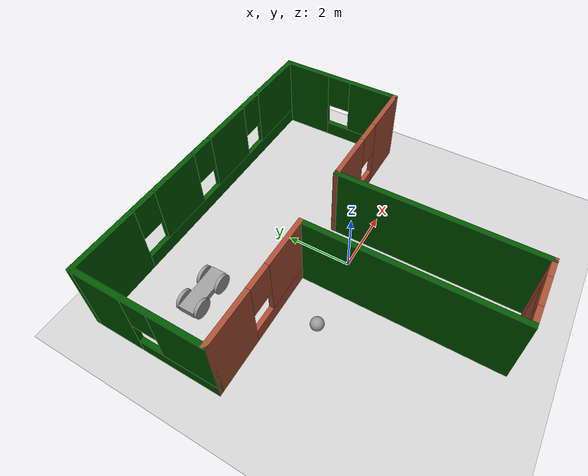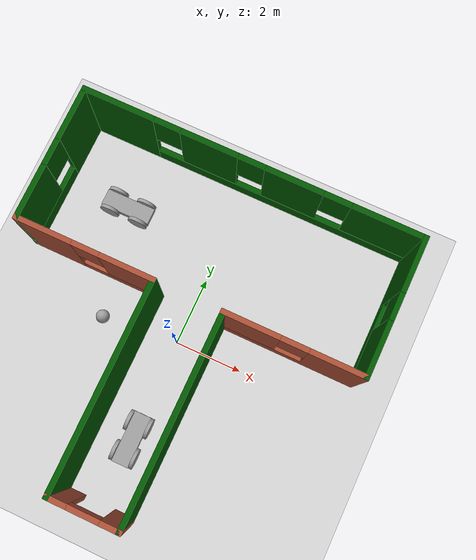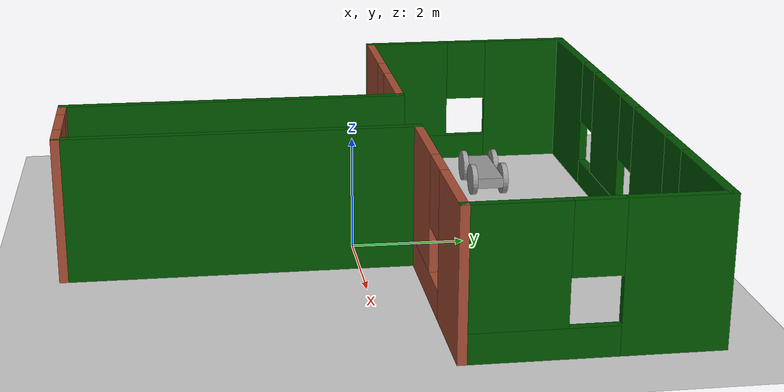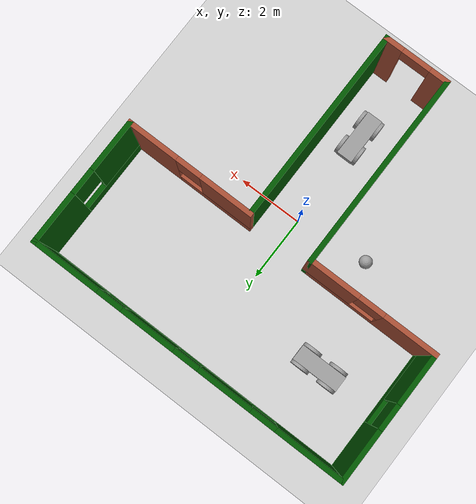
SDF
<sdf version="1.6">
 <world name="default">
  <plugin name="timsAwesomePlugin" filename="libtimsAwesomePlugin.so"/>
  <light name="sun" type="directional">
   <pose>0 0 10 0 -0 0</pose>
   <diffuse>0.8 0.8 0.8 1</diffuse>
   <specular>0.2 0.2 0.2 1</specular>
   <attenuation>
    <range>1000</range>
    <constant>0.9</constant>
    <linear>0.01</linear>
    <quadratic>0.001</quadratic>
   </attenuation>
   <direction>-0.5 0.1 -0.9</direction>
  </light>
  <model name="ground_plane">
   <static>1</static>
   <link name="link">
    <collision name="collision">
     <geometry><plane><normal>0 0 1</normal><size>100 100</size></plane></geometry>
     <surface>
      <contact><collide_bitmask>65535</collide_bitmask></contact>
      <friction><ode><mu>100</mu><mu2>50</mu2></ode></friction>
     </surface>
    </collision>
    <visual name="visual">
     <cast_shadows>0</cast_shadows>
     <geometry><plane><normal>0 0 1</normal><size>100 100</size></plane></geometry>
     <material>
      <script><uri>file://media/materials/scripts/gazebo.material</uri><name>Gazebo/Grey</name></script>
     </material>
    </visual>
   </link>
  </model>
  <gravity>0 0 -9.8</gravity>
  <magnetic_field>6e-06 2.3e-05 -4.2e-05</magnetic_field>
  <atmosphere type="adiabatic"/>
  <physics name="default_physics" default="0" type="ode">
   <max_step_size>0.001</max_step_size>
   <real_time_factor>1</real_time_factor>
   <real_time_update_rate>1000</real_time_update_rate>
  </physics>
  <scene><ambient>0.4 0.4 0.4 1</ambient><background>0.7 0.7 0.7 1</background><shadows>1</shadows></scene>
  <spherical_coordinates>
   <surface_model>EARTH_WGS84</surface_model>
   <latitude_deg>0</latitude_deg>
   <longitude_deg>0</longitude_deg>
   <elevation>0</elevation>
   <heading_deg>0</heading_deg>
  </spherical_coordinates>
  <model name="Big_T_Building">
   <link name="Wall_10">
    <pose>5 3 0 0 0 -1.5708</pose>
    <visual name="Wall_10_Visual_0">
     <pose>-1.2375 0 1.25 0 -0 0</pose>
     <geometry><box><size>1.675 0.15 2.5</size></box></geometry>
     <material>
      <script><uri>file://media/materials/scripts/gazebo.material</uri><name>Gazebo/Grey</name></script>
      <ambient>0 0.333333 0 1</ambient>
     </material>
     <meta><layer>0</layer></meta>
    </visual>
    <collision name="Wall_10_Collision_0">
     <geometry><box><size>1.675 0.15 2.5</size></box></geometry>
     <pose>-1.2375 0 1.25 0 -0 0</pose>
    </collision>
    <visual name="Wall_10_Visual_1">
     <pose>0.8375 0 0.25 0 -0 0</pose>
     <geometry><box><size>2.475 0.15 0.5</size></box></geometry>
     <material>
      <script><uri>file://media/materials/scripts/gazebo.material</uri><name>Gazebo/Grey</name></script>
      <ambient>0 0.333333 0 1</ambient>
     </material>
     <meta><layer>0</layer></meta>
    </visual>
    <collision name="Wall_10_Collision_1">
     <geometry><box><size>2.475 0.15 0.5</size></box></geometry>
     <pose>0.8375 0 0.25 0 -0 0</pose>
    </collision>
    <visual name="Wall_10_Visual_2">
     <pose>1.2375 0 1.5 0 -0 0</pose>
     <geometry><box><size>1.675 0.15 2</size></box></geometry>
     <material>
      <script><uri>file://media/materials/scripts/gazebo.material</uri><name>Gazebo/Grey</name></script>
      <ambient>0 0.333333 0 1</ambient>
     </material>
     <meta><layer>0</layer></meta>
    </visual>
    <collision name="Wall_10_Collision_2">
     <geometry><box><size>1.675 0.15 2</size></box></geometry>
     <pose>1.2375 0 1.5 0 -0 0</pose>
    </collision>
    <visual name="Wall_10_Visual_3">
     <pose>0 0 1.9 0 -0 0</pose>
     <geometry><box><size>0.8 0.15 1.2</size></box></geometry>
     <material>
      <script><uri>file://media/materials/scripts/gazebo.material</uri><name>Gazebo/Grey</name></script>
      <ambient>0 0.333333 0 1</ambient>
     </material>
     <meta><layer>0</layer></meta>
    </visual>
    <collision name="Wall_10_Collision_3">
     <geometry><box><size>0.8 0.15 1.2</size></box></geometry>
     <pose>0 0 1.9 0 -0 0</pose>
    </collision>
   </link>
   <link name="Wall_12">
    <pose>-5 3 0 0 0 -1.5708</pose>
    <visual name="Wall_12_Visual_0">
     <pose>-1.2375 0 1.25 0 -0 0</pose>
     <geometry><box><size>1.675 0.15 2.5</size></box></geometry>
     <material>
      <script><uri>file://media/materials/scripts/gazebo.material</uri><name>Gazebo/Grey</name></script>
      <ambient>0 0.333333 0 1</ambient>
     </material>
     <meta><layer>0</layer></meta>
    </visual>
    <collision name="Wall_12_Collision_0">
     <geometry><box><size>1.675 0.15 2.5</size></box></geometry>
     <pose>-1.2375 0 1.25 0 -0 0</pose>
    </collision>
    <visual name="Wall_12_Visual_1">
     <pose>0.8375 0 0.25 0 -0 0</pose>
     <geometry><box><size>2.475 0.15 0.5</size></box></geometry>
     <material>
      <script><uri>file://media/materials/scripts/gazebo.material</uri><name>Gazebo/Grey</name></script>
      <ambient>0 0.333333 0 1</ambient>
     </material>
     <meta><layer>0</layer></meta>
    </visual>
    <collision name="Wall_12_Collision_1">
     <geometry><box><size>2.475 0.15 0.5</size></box></geometry>
     <pose>0.8375 0 0.25 0 -0 0</pose>
    </collision>
    <visual name="Wall_12_Visual_2">
     <pose>1.2375 0 1.5 0 -0 0</pose>
     <geometry><box><size>1.675 0.15 2</size></box></geometry>
     <material>
      <script><uri>file://media/materials/scripts/gazebo.material</uri><name>Gazebo/Grey</name></script>
      <ambient>0 0.333333 0 1</ambient>
     </material>
     <meta><layer>0</layer></meta>
    </visual>
    <collision name="Wall_12_Collision_2">
     <geometry><box><size>1.675 0.15 2</size></box></geometry>
     <pose>1.2375 0 1.5 0 -0 0</pose>
    </collision>
    <visual name="Wall_12_Visual_3">
     <pose>0 0 1.9 0 -0 0</pose>
     <geometry><box><size>0.8 0.15 1.2</size></box></geometry>
     <material>
      <script><uri>file://media/materials/scripts/gazebo.material</uri><name>Gazebo/Grey</name></script>
      <ambient>0 0.333333 0 1</ambient>
     </material>
     <meta><layer>0</layer></meta>
    </visual>
    <collision name="Wall_12_Collision_3">
     <geometry><box><size>0.8 0.15 1.2</size></box></geometry>
     <pose>0 0 1.9 0 -0 0</pose>
    </collision>
   </link>
   <link name="Wall_25">
    <pose>-3 1 0 0 -0 0</pose>
    <visual name="Wall_25_Visual_0">
     <pose>-1.22162 0 1.25 0 -0 0</pose>
     <geometry><box><size>1.70676 0.15 2.5</size></box></geometry>
     <material>
      <script><uri>file://media/materials/scripts/gazebo.material</uri><name>Gazebo/Bricks</name></script>
      <ambient>0 0.333333 0 1</ambient>
     </material>
     <meta><layer>0</layer></meta>
    </visual>
    <collision name="Wall_25_Collision_0">
     <geometry><box><size>1.70676 0.15 2.5</size></box></geometry>
     <pose>-1.22162 0 1.25 0 -0 0</pose>
    </collision>
    <visual name="Wall_25_Visual_1">
     <pose>0.853379 0 0.25 0 -0 0</pose>
     <geometry><box><size>2.44324 0.15 0.5</size></box></geometry>
     <material>
      <script><uri>file://media/materials/scripts/gazebo.material</uri><name>Gazebo/Bricks</name></script>
      <ambient>0 0.333333 0 1</ambient>
     </material>
     <meta><layer>0</layer></meta>
    </visual>
    <collision name="Wall_25_Collision_1">
     <geometry><box><size>2.44324 0.15 0.5</size></box></geometry>
     <pose>0.853379 0 0.25 0 -0 0</pose>
    </collision>
    <visual name="Wall_25_Visual_2">
     <pose>1.25338 0 1.5 0 -0 0</pose>
     <geometry><box><size>1.64324 0.15 2</size></box></geometry>
     <material>
      <script><uri>file://media/materials/scripts/gazebo.material</uri><name>Gazebo/Bricks</name></script>
      <ambient>0 0.333333 0 1</ambient>
     </material>
     <meta><layer>0</layer></meta>
    </visual>
    <collision name="Wall_25_Collision_2">
     <geometry><box><size>1.64324 0.15 2</size></box></geometry>
     <pose>1.25338 0 1.5 0 -0 0</pose>
    </collision>
    <visual name="Wall_25_Visual_3">
     <pose>0.031757 0 1.9 0 -0 0</pose>
     <geometry><box><size>0.8 0.15 1.2</size></box></geometry>
     <material>
      <script><uri>file://media/materials/scripts/gazebo.material</uri><name>Gazebo/Bricks</name></script>
      <ambient>0 0.333333 0 1</ambient>
     </material>
     <meta><layer>0</layer></meta>
    </visual>
    <collision name="Wall_25_Collision_3">
     <geometry><box><size>0.8 0.15 1.2</size></box></geometry>
     <pose>0.031757 0 1.9 0 -0 0</pose>
    </collision>
   </link>
   <link name="Wall_27">
    <pose>3 1 0 0 -0 3.14159</pose>
    <visual name="Wall_27_Visual_0">
     <pose>-1.24879 0 1.25 0 -0 0</pose>
     <geometry><box><size>1.65241 0.15 2.5</size></box></geometry>
     <material>
      <script><uri>file://media/materials/scripts/gazebo.material</uri><name>Gazebo/Bricks</name></script>
      <ambient>0 0.333333 0 1</ambient>
     </material>
     <meta><layer>0</layer></meta>
    </visual>
    <collision name="Wall_27_Collision_0">
     <geometry><box><size>1.65241 0.15 2.5</size></box></geometry>
     <pose>-1.24879 0 1.25 0 -0 0</pose>
    </collision>
    <visual name="Wall_27_Visual_1">
     <pose>0.826208 0 0.25 0 -0 0</pose>
     <geometry><box><size>2.49758 0.15 0.5</size></box></geometry>
     <material>
      <script><uri>file://media/materials/scripts/gazebo.material</uri><name>Gazebo/Bricks</name></script>
      <ambient>0 0.333333 0 1</ambient>
     </material>
     <meta><layer>0</layer></meta>
    </visual>
    <collision name="Wall_27_Collision_1">
     <geometry><box><size>2.49758 0.15 0.5</size></box></geometry>
     <pose>0.826208 0 0.25 0 -0 0</pose>
    </collision>
    <visual name="Wall_27_Visual_2">
     <pose>1.22621 0 1.5 0 -0 0</pose>
     <geometry><box><size>1.69758 0.15 2</size></box></geometry>
     <material>
      <script><uri>file://media/materials/scripts/gazebo.material</uri><name>Gazebo/Bricks</name></script>
      <ambient>0 0.333333 0 1</ambient>
     </material>
     <meta><layer>0</layer></meta>
    </visual>
    <collision name="Wall_27_Collision_2">
     <geometry><box><size>1.69758 0.15 2</size></box></geometry>
     <pose>1.22621 0 1.5 0 -0 0</pose>
    </collision>
    <visual name="Wall_27_Visual_3">
     <pose>-0.022585 0 1.9 0 -0 0</pose>
     <geometry><box><size>0.8 0.15 1.2</size></box></geometry>
     <material>
      <script><uri>file://media/materials/scripts/gazebo.material</uri><name>Gazebo/Bricks</name></script>
      <ambient>0 0.333333 0 1</ambient>
     </material>
     <meta><layer>0</layer></meta>
    </visual>
    <collision name="Wall_27_Collision_3">
     <geometry><box><size>0.8 0.15 1.2</size></box></geometry>
     <pose>-0.022585 0 1.9 0 -0 0</pose>
    </collision>
   </link>
   <link name="Wall_29">
    <collision name="Wall_29_Collision">
     <geometry><box><size>6.15 0.15 2.5</size></box></geometry>
     <pose>0 0 1.25 0 -0 0</pose>
    </collision>
    <visual name="Wall_29_Visual">
     <pose>0 0 1.25 0 -0 0</pose>
     <geometry><box><size>6.15 0.15 2.5</size></box></geometry>
     <material>
      <script><uri>file://media/materials/scripts/gazebo.material</uri><name>Gazebo/Grey</name></script>
      <ambient>0 0.333333 0 1</ambient>
     </material>
     <meta><layer>0</layer></meta>
    </visual>
    <pose>-1 -2 0 0 0 -1.5708</pose>
   </link>
   <link name="Wall_31">
    <collision name="Wall_31_Collision">
     <geometry><box><size>6.15 0.15 2.5</size></box></geometry>
     <pose>0 0 1.25 0 -0 0</pose>
    </collision>
    <visual name="Wall_31_Visual">
     <pose>0 0 1.25 0 -0 0</pose>
     <geometry><box><size>6.15 0.15 2.5</size></box></geometry>
     <material>
      <script><uri>file://media/materials/scripts/gazebo.material</uri><name>Gazebo/Grey</name></script>
      <ambient>0 0.333333 0 1</ambient>
     </material>
     <meta><layer>0</layer></meta>
    </visual>
    <pose>1 -2 0 0 0 -1.5708</pose>
   </link>
   <link name="Wall_32">
    <pose>0 -5 0 0 -0 3.14159</pose>
    <visual name="Wall_32_Visual_0">
     <pose>-0.763969 0 1.25 0 -0 0</pose>
     <geometry><box><size>0.622062 0.15 2.5</size></box></geometry>
     <material>
      <script><uri>file://media/materials/scripts/gazebo.material</uri><name>Gazebo/Bricks</name></script>
      <ambient>0 0.333333 0 1</ambient>
     </material>
     <meta><layer>0</layer></meta>
    </visual>
    <collision name="Wall_32_Collision_0">
     <geometry><box><size>0.622062 0.15 2.5</size></box></geometry>
     <pose>-0.763969 0 1.25 0 -0 0</pose>
    </collision>
    <visual name="Wall_32_Visual_1">
     <pose>0.761031 0 1.25 0 -0 0</pose>
     <geometry><box><size>0.627938 0.15 2.5</size></box></geometry>
     <material>
      <script><uri>file://media/materials/scripts/gazebo.material</uri><name>Gazebo/Bricks</name></script>
      <ambient>0 0.333333 0 1</ambient>
     </material>
     <meta><layer>0</layer></meta>
    </visual>
    <collision name="Wall_32_Collision_1">
     <geometry><box><size>0.627938 0.15 2.5</size></box></geometry>
     <pose>0.761031 0 1.25 0 -0 0</pose>
    </collision>
    <visual name="Wall_32_Visual_2">
     <pose>-0.002938 0 2.25 0 -0 0</pose>
     <geometry><box><size>0.9 0.15 0.5</size></box></geometry>
     <material>
      <script><uri>file://media/materials/scripts/gazebo.material</uri><name>Gazebo/Bricks</name></script>
      <ambient>0 0.333333 0 1</ambient>
     </material>
     <meta><layer>0</layer></meta>
    </visual>
    <collision name="Wall_32_Collision_2">
     <geometry><box><size>0.9 0.15 0.5</size></box></geometry>
     <pose>-0.002938 0 2.25 0 -0 0</pose>
    </collision>
   </link>
   <link name="Wall_9">
    <pose>0 5 0 0 -0 0</pose>
    <visual name="Wall_9_Visual_0">
     <pose>-3.9875 0 1.25 0 -0 0</pose>
     <geometry><box><size>2.175 0.15 2.5</size></box></geometry>
     <material>
      <script><uri>file://media/materials/scripts/gazebo.material</uri><name>Gazebo/Grey</name></script>
      <ambient>0 0.333333 0 1</ambient>
     </material>
     <meta><layer>0</layer></meta>
    </visual>
    <collision name="Wall_9_Collision_0">
     <geometry><box><size>2.175 0.15 2.5</size></box></geometry>
     <pose>-3.9875 0 1.25 0 -0 0</pose>
    </collision>
    <visual name="Wall_9_Visual_1">
     <pose>1.0875 0 0.25 0 -0 0</pose>
     <geometry><box><size>7.975 0.15 0.5</size></box></geometry>
     <material>
      <script><uri>file://media/materials/scripts/gazebo.material</uri><name>Gazebo/Grey</name></script>
      <ambient>0 0.333333 0 1</ambient>
     </material>
     <meta><layer>0</layer></meta>
    </visual>
    <collision name="Wall_9_Collision_1">
     <geometry><box><size>7.975 0.15 0.5</size></box></geometry>
     <pose>1.0875 0 0.25 0 -0 0</pose>
    </collision>
    <visual name="Wall_9_Visual_2">
     <pose>-1.25 0 1.5 0 -0 0</pose>
     <geometry><box><size>1.7 0.15 2</size></box></geometry>
     <material>
      <script><uri>file://media/materials/scripts/gazebo.material</uri><name>Gazebo/Grey</name></script>
      <ambient>0 0.333333 0 1</ambient>
     </material>
     <meta><layer>0</layer></meta>
    </visual>
    <collision name="Wall_9_Collision_2">
     <geometry><box><size>1.7 0.15 2</size></box></geometry>
     <pose>-1.25 0 1.5 0 -0 0</pose>
    </collision>
    <visual name="Wall_9_Visual_3">
     <pose>1.25 0 1.5 0 -0 0</pose>
     <geometry><box><size>1.7 0.15 2</size></box></geometry>
     <material>
      <script><uri>file://media/materials/scripts/gazebo.material</uri><name>Gazebo/Grey</name></script>
      <ambient>0 0.333333 0 1</ambient>
     </material>
     <meta><layer>0</layer></meta>
    </visual>
    <collision name="Wall_9_Collision_3">
     <geometry><box><size>1.7 0.15 2</size></box></geometry>
     <pose>1.25 0 1.5 0 -0 0</pose>
    </collision>
    <visual name="Wall_9_Visual_4">
     <pose>3.9875 0 1.5 0 -0 0</pose>
     <geometry><box><size>2.175 0.15 2</size></box></geometry>
     <material>
      <script><uri>file://media/materials/scripts/gazebo.material</uri><name>Gazebo/Grey</name></script>
      <ambient>0 0.333333 0 1</ambient>
     </material>
     <meta><layer>0</layer></meta>
    </visual>
    <collision name="Wall_9_Collision_4">
     <geometry><box><size>2.175 0.15 2</size></box></geometry>
     <pose>3.9875 0 1.5 0 -0 0</pose>
    </collision>
    <visual name="Wall_9_Visual_5">
     <pose>-2.5 0 1.9 0 -0 0</pose>
     <geometry><box><size>0.8 0.15 1.2</size></box></geometry>
     <material>
      <script><uri>file://media/materials/scripts/gazebo.material</uri><name>Gazebo/Grey</name></script>
      <ambient>0 0.333333 0 1</ambient>
     </material>
     <meta><layer>0</layer></meta>
    </visual>
    <collision name="Wall_9_Collision_5">
     <geometry><box><size>0.8 0.15 1.2</size></box></geometry>
     <pose>-2.5 0 1.9 0 -0 0</pose>
    </collision>
    <visual name="Wall_9_Visual_6">
     <pose>-0 0 1.9 0 -0 0</pose>
     <geometry><box><size>0.8 0.15 1.2</size></box></geometry>
     <material>
      <script><uri>file://media/materials/scripts/gazebo.material</uri><name>Gazebo/Grey</name></script>
      <ambient>0 0.333333 0 1</ambient>
     </material>
     <meta><layer>0</layer></meta>
    </visual>
    <collision name="Wall_9_Collision_6">
     <geometry><box><size>0.8 0.15 1.2</size></box></geometry>
     <pose>-0 0 1.9 0 -0 0</pose>
    </collision>
    <visual name="Wall_9_Visual_7">
     <pose>2.5 0 1.9 0 -0 0</pose>
     <geometry><box><size>0.8 0.15 1.2</size></box></geometry>
     <material>
      <script><uri>file://media/materials/scripts/gazebo.material</uri><name>Gazebo/Grey</name></script>
      <ambient>0 0.333333 0 1</ambient>
     </material>
     <meta><layer>0</layer></meta>
    </visual>
    <collision name="Wall_9_Collision_7">
     <geometry><box><size>0.8 0.15 1.2</size></box></geometry>
     <pose>2.5 0 1.9 0 -0 0</pose>
    </collision>
   </link>
   <static>1</static>
  </model>
  <model name="fourWheelRobot">
   <link name="link_0_clone">
    <inertial>
     <mass>1</mass>
     <inertia>
      <ixx>0.166667</ixx>
      <ixy>0</ixy>
      <ixz>0</ixz>
      <iyy>0.166667</iyy>
      <iyz>0</iyz>
      <izz>0.166667</izz>
     </inertia>
    </inertial>
    <visual name="visual">
     <geometry><box><size>1.5 0.5 0.2</size></box></geometry>
     <material>
      <lighting>1</lighting>
      <script><uri>file://media/materials/scripts/gazebo.material</uri><name>Gazebo/Grey</name></script>
      <shader type="pixel"><normal_map>__default__</normal_map></shader>
      <ambient>0.3 0.3 0.3 1</ambient>
      <diffuse>0.7 0.7 0.7 1</diffuse>
      <specular>0.01 0.01 0.01 1</specular>
      <emissive>0 0 0 1</emissive>
     </material>
    </visual>
    <collision name="collision">
     <geometry><box><size>1.5 0.5 0.2</size></box></geometry>
     <surface>
      <friction>
       <ode><mu>1</mu><mu2>1</mu2><fdir1>0 0 0</fdir1><slip1>0</slip1><slip2>0</slip2></ode>
       <torsional>
        <coefficient>1</coefficient>
        <patch_radius>0</patch_radius>
        <surface_radius>0</surface_radius>
        <use_patch_radius>1</use_patch_radius>
        <ode><slip>0</slip></ode>
       </torsional>
      </friction>
      <bounce><restitution_coefficient>0</restitution_coefficient><threshold>1e+06</threshold></bounce>
      <contact>
       <collide_without_contact>0</collide_without_contact>
       <collide_without_contact_bitmask>1</collide_without_contact_bitmask>
       <collide_bitmask>1</collide_bitmask>
       <ode>
        <soft_cfm>0</soft_cfm>
        <soft_erp>0.2</soft_erp>
        <kp>1e+13</kp>
        <kd>1</kd>
        <max_vel>0.01</max_vel>
        <min_depth>0</min_depth>
       </ode>
       <bullet>
        <split_impulse>1</split_impulse>
        <split_impulse_penetration_threshold>-0.01</split_impulse_penetration_threshold>
        <soft_cfm>0</soft_cfm>
        <soft_erp>0.2</soft_erp>
        <kp>1e+13</kp>
        <kd>1</kd>
       </bullet>
      </contact>
     </surface>
    </collision>
   </link>
   <link name="link_1_clone">
    <pose>0.45 -0.300029 0 1.5707 -0 0</pose>
    <inertial>
     <mass>1</mass>
     <inertia><ixx>0.145833</ixx><ixy>0</ixy><ixz>0</ixz><iyy>0.145833</iyy><iyz>0</iyz><izz>0.125</izz></inertia>
    </inertial>
    <visual name="visual">
     <geometry><cylinder><radius>0.3</radius><length>0.1</length></cylinder></geometry>
     <material>
      <lighting>1</lighting>
      <script><uri>file://media/materials/scripts/gazebo.material</uri><name>Gazebo/Grey</name></script>
      <shader type="pixel"><normal_map>__default__</normal_map></shader>
      <ambient>0.3 0.3 0.3 1</ambient>
      <diffuse>0.7 0.7 0.7 1</diffuse>
      <specular>0.01 0.01 0.01 1</specular>
      <emissive>0 0 0 1</emissive>
     </material>
    </visual>
    <collision name="collision">
     <geometry><cylinder><radius>0.3</radius><length>0.1</length></cylinder></geometry>
     <surface>
      <friction>
       <ode><mu>1</mu><mu2>1</mu2><fdir1>0 0 0</fdir1><slip1>0</slip1><slip2>0</slip2></ode>
       <torsional>
        <coefficient>1</coefficient>
        <patch_radius>0</patch_radius>
        <surface_radius>0</surface_radius>
        <use_patch_radius>1</use_patch_radius>
        <ode><slip>0</slip></ode>
       </torsional>
      </friction>
      <bounce><restitution_coefficient>0</restitution_coefficient><threshold>1e+06</threshold></bounce>
      <contact>
       <collide_without_contact>0</collide_without_contact>
       <collide_without_contact_bitmask>1</collide_without_contact_bitmask>
       <collide_bitmask>1</collide_bitmask>
       <ode>
        <soft_cfm>0</soft_cfm>
        <soft_erp>0.2</soft_erp>
        <kp>1e+13</kp>
        <kd>1</kd>
        <max_vel>0.01</max_vel>
        <min_depth>0</min_depth>
       </ode>
       <bullet>
        <split_impulse>1</split_impulse>
        <split_impulse_penetration_threshold>-0.01</split_impulse_penetration_threshold>
        <soft_cfm>0</soft_cfm>
        <soft_erp>0.2</soft_erp>
        <kp>1e+13</kp>
        <kd>1</kd>
       </bullet>
      </contact>
     </surface>
    </collision>
   </link>
   <link name="link_1_clone_clone">
    <pose>-0.45 -0.300029 0 1.5707 -0 0</pose>
    <inertial>
     <mass>1</mass>
     <inertia><ixx>0.145833</ixx><ixy>0</ixy><ixz>0</ixz><iyy>0.145833</iyy><iyz>0</iyz><izz>0.125</izz></inertia>
    </inertial>
    <visual name="visual">
     <geometry><cylinder><radius>0.3</radius><length>0.1</length></cylinder></geometry>
     <material>
      <lighting>1</lighting>
      <script><uri>file://media/materials/scripts/gazebo.material</uri><name>Gazebo/Grey</name></script>
      <shader type="pixel"><normal_map>__default__</normal_map></shader>
      <ambient>0.3 0.3 0.3 1</ambient>
      <diffuse>0.7 0.7 0.7 1</diffuse>
      <specular>0.01 0.01 0.01 1</specular>
      <emissive>0 0 0 1</emissive>
     </material>
    </visual>
    <collision name="collision">
     <geometry><cylinder><radius>0.3</radius><length>0.1</length></cylinder></geometry>
     <surface>
      <friction>
       <ode><mu>1</mu><mu2>1</mu2><fdir1>0 0 0</fdir1><slip1>0</slip1><slip2>0</slip2></ode>
       <torsional>
        <coefficient>1</coefficient>
        <patch_radius>0</patch_radius>
        <surface_radius>0</surface_radius>
        <use_patch_radius>1</use_patch_radius>
        <ode><slip>0</slip></ode>
       </torsional>
      </friction>
      <bounce><restitution_coefficient>0</restitution_coefficient><threshold>1e+06</threshold></bounce>
      <contact>
       <collide_without_contact>0</collide_without_contact>
       <collide_without_contact_bitmask>1</collide_without_contact_bitmask>
       <collide_bitmask>1</collide_bitmask>
       <ode>
        <soft_cfm>0</soft_cfm>
        <soft_erp>0.2</soft_erp>
        <kp>1e+13</kp>
        <kd>1</kd>
        <max_vel>0.01</max_vel>
        <min_depth>0</min_depth>
       </ode>
       <bullet>
        <split_impulse>1</split_impulse>
        <split_impulse_penetration_threshold>-0.01</split_impulse_penetration_threshold>
        <soft_cfm>0</soft_cfm>
        <soft_erp>0.2</soft_erp>
        <kp>1e+13</kp>
        <kd>1</kd>
       </bullet>
      </contact>
     </surface>
    </collision>
   </link>
   <link name="link_1_clone_clone_0">
    <pose>-0.45 0.300029 0 1.5707 -0 0</pose>
    <inertial>
     <mass>1</mass>
     <inertia><ixx>0.145833</ixx><ixy>0</ixy><ixz>0</ixz><iyy>0.145833</iyy><iyz>0</iyz><izz>0.125</izz></inertia>
    </inertial>
    <visual name="visual">
     <geometry><cylinder><radius>0.3</radius><length>0.1</length></cylinder></geometry>
     <material>
      <lighting>1</lighting>
      <script><uri>file://media/materials/scripts/gazebo.material</uri><name>Gazebo/Grey</name></script>
      <shader type="pixel"><normal_map>__default__</normal_map></shader>
      <ambient>0.3 0.3 0.3 1</ambient>
      <diffuse>0.7 0.7 0.7 1</diffuse>
      <specular>0.01 0.01 0.01 1</specular>
      <emissive>0 0 0 1</emissive>
     </material>
    </visual>
    <collision name="collision">
     <geometry><cylinder><radius>0.3</radius><length>0.1</length></cylinder></geometry>
     <surface>
      <friction>
       <ode><mu>1</mu><mu2>1</mu2><fdir1>0 0 0</fdir1><slip1>0</slip1><slip2>0</slip2></ode>
       <torsional>
        <coefficient>1</coefficient>
        <patch_radius>0</patch_radius>
        <surface_radius>0</surface_radius>
        <use_patch_radius>1</use_patch_radius>
        <ode><slip>0</slip></ode>
       </torsional>
      </friction>
      <bounce><restitution_coefficient>0</restitution_coefficient><threshold>1e+06</threshold></bounce>
      <contact>
       <collide_without_contact>0</collide_without_contact>
       <collide_without_contact_bitmask>1</collide_without_contact_bitmask>
       <collide_bitmask>1</collide_bitmask>
       <ode>
        <soft_cfm>0</soft_cfm>
        <soft_erp>0.2</soft_erp>
        <kp>1e+13</kp>
        <kd>1</kd>
        <max_vel>0.01</max_vel>
        <min_depth>0</min_depth>
       </ode>
       <bullet>
        <split_impulse>1</split_impulse>
        <split_impulse_penetration_threshold>-0.01</split_impulse_penetration_threshold>
        <soft_cfm>0</soft_cfm>
        <soft_erp>0.2</soft_erp>
        <kp>1e+13</kp>
        <kd>1</kd>
       </bullet>
      </contact>
     </surface>
    </collision>
   </link>
   <link name="link_1_clone_clone_1">
    <pose>0.45 0.300029 0 1.5707 -0 0</pose>
    <inertial>
     <mass>1</mass>
     <inertia><ixx>0.145833</ixx><ixy>0</ixy><ixz>0</ixz><iyy>0.145833</iyy><iyz>0</iyz><izz>0.125</izz></inertia>
    </inertial>
    <visual name="visual">
     <geometry><cylinder><radius>0.3</radius><length>0.1</length></cylinder></geometry>
     <material>
      <lighting>1</lighting>
      <script><uri>file://media/materials/scripts/gazebo.material</uri><name>Gazebo/Grey</name></script>
      <shader type="pixel"><normal_map>__default__</normal_map></shader>
      <ambient>0.3 0.3 0.3 1</ambient>
      <diffuse>0.7 0.7 0.7 1</diffuse>
      <specular>0.01 0.01 0.01 1</specular>
      <emissive>0 0 0 1</emissive>
     </material>
    </visual>
    <collision name="collision">
     <geometry><cylinder><radius>0.3</radius><length>0.1</length></cylinder></geometry>
     <surface>
      <friction>
       <ode><mu>1</mu><mu2>1</mu2><fdir1>0 0 0</fdir1><slip1>0</slip1><slip2>0</slip2></ode>
       <torsional>
        <coefficient>1</coefficient>
        <patch_radius>0</patch_radius>
        <surface_radius>0</surface_radius>
        <use_patch_radius>1</use_patch_radius>
        <ode><slip>0</slip></ode>
       </torsional>
      </friction>
      <bounce><restitution_coefficient>0</restitution_coefficient><threshold>1e+06</threshold></bounce>
      <contact>
       <collide_without_contact>0</collide_without_contact>
       <collide_without_contact_bitmask>1</collide_without_contact_bitmask>
       <collide_bitmask>1</collide_bitmask>
       <ode>
        <soft_cfm>0</soft_cfm>
        <soft_erp>0.2</soft_erp>
        <kp>1e+13</kp>
        <kd>1</kd>
        <max_vel>0.01</max_vel>
        <min_depth>0</min_depth>
       </ode>
       <bullet>
        <split_impulse>1</split_impulse>
        <split_impulse_penetration_threshold>-0.01</split_impulse_penetration_threshold>
        <soft_cfm>0</soft_cfm>
        <soft_erp>0.2</soft_erp>
        <kp>1e+13</kp>
        <kd>1</kd>
       </bullet>
      </contact>
     </surface>
    </collision>
   </link>
   <joint name="link_0_clone_JOINT_0" type="revolute">
    <parent>link_0_clone</parent>
    <child>link_1_clone_clone</child>
    <axis>
     <xyz>0 0 1</xyz>
     <use_parent_model_frame>0</use_parent_model_frame>
     <limit>
      <lower>-1.79769e+308</lower>
      <upper>1.79769e+308</upper>
      <effort>-1</effort>
      <velocity>-1</velocity>
     </limit>
     <dynamics>
      <spring_reference>0</spring_reference>
      <spring_stiffness>0</spring_stiffness>
      <damping>0</damping>
      <friction>0</friction>
     </dynamics>
    </axis>
    <physics>
     <ode><limit><cfm>0</cfm><erp>0.2</erp></limit><suspension><cfm>0</cfm><erp>0.2</erp></suspension></ode>
    </physics>
   </joint>
   <joint name="link_0_clone_JOINT_1" type="revolute">
    <parent>link_0_clone</parent>
    <child>link_1_clone</child>
    <axis>
     <xyz>0 0 1</xyz>
     <use_parent_model_frame>0</use_parent_model_frame>
     <limit>
      <lower>-1.79769e+308</lower>
      <upper>1.79769e+308</upper>
      <effort>-1</effort>
      <velocity>-1</velocity>
     </limit>
     <dynamics>
      <spring_reference>0</spring_reference>
      <spring_stiffness>0</spring_stiffness>
      <damping>0</damping>
     </dynamics>
    </axis>
    <physics>
     <ode><limit><cfm>0</cfm><erp>0.2</erp></limit><suspension><cfm>0</cfm><erp>0.2</erp></suspension></ode>
    </physics>
   </joint>
   <joint name="link_0_clone_JOINT_2" type="revolute">
    <parent>link_0_clone</parent>
    <child>link_1_clone_clone_0</child>
    <axis>
     <xyz>0 0 1</xyz>
     <use_parent_model_frame>0</use_parent_model_frame>
     <limit>
      <lower>-1.79769e+308</lower>
      <upper>1.79769e+308</upper>
      <effort>-1</effort>
      <velocity>-1</velocity>
     </limit>
     <dynamics>
      <spring_reference>0</spring_reference>
      <spring_stiffness>0</spring_stiffness>
      <damping>0</damping>
     </dynamics>
    </axis>
    <physics>
     <ode><limit><cfm>0</cfm><erp>0.2</erp></limit><suspension><cfm>0</cfm><erp>0.2</erp></suspension></ode>
    </physics>
   </joint>
   <joint name="link_0_clone_JOINT_3" type="revolute">
    <parent>link_0_clone</parent>
    <child>link_1_clone_clone_1</child>
    <axis>
     <xyz>0 0 1</xyz>
     <use_parent_model_frame>0</use_parent_model_frame>
     <limit>
      <lower>-1.79769e+308</lower>
      <upper>1.79769e+308</upper>
      <effort>-1</effort>
      <velocity>-1</velocity>
     </limit>
     <dynamics>
      <spring_reference>0</spring_reference>
      <spring_stiffness>0</spring_stiffness>
      <damping>0</damping>
     </dynamics>
    </axis>
    <physics>
     <ode><limit><cfm>0</cfm><erp>0.2</erp></limit><suspension><cfm>0</cfm><erp>0.2</erp></suspension></ode>
    </physics>
   </joint>
   <static>0</static>
   <pose>-3.00001 2.99943 0.300003 4e-06 0 0.001312</pose>
  </model>
  <model name="fourWheelRobot_0">
   <link name="link_0_clone">
    <inertial>
     <mass>1</mass>
     <inertia>
      <ixx>0.166667</ixx>
      <ixy>0</ixy>
      <ixz>0</ixz>
      <iyy>0.166667</iyy>
      <iyz>0</iyz>
      <izz>0.166667</izz>
     </inertia>
    </inertial>
    <visual name="visual">
     <geometry><box><size>1.5 0.5 0.2</size></box></geometry>
     <material>
      <lighting>1</lighting>
      <script><uri>file://media/materials/scripts/gazebo.material</uri><name>Gazebo/Grey</name></script>
      <shader type="pixel"><normal_map>__default__</normal_map></shader>
      <ambient>0.3 0.3 0.3 1</ambient>
      <diffuse>0.7 0.7 0.7 1</diffuse>
      <specular>0.01 0.01 0.01 1</specular>
      <emissive>0 0 0 1</emissive>
     </material>
    </visual>
    <collision name="collision">
     <geometry><box><size>1.5 0.5 0.2</size></box></geometry>
     <surface>
      <friction>
       <ode><mu>1</mu><mu2>1</mu2><fdir1>0 0 0</fdir1><slip1>0</slip1><slip2>0</slip2></ode>
       <torsional>
        <coefficient>1</coefficient>
        <patch_radius>0</patch_radius>
        <surface_radius>0</surface_radius>
        <use_patch_radius>1</use_patch_radius>
        <ode><slip>0</slip></ode>
       </torsional>
      </friction>
      <bounce><restitution_coefficient>0</restitution_coefficient><threshold>1e+06</threshold></bounce>
      <contact>
       <collide_without_contact>0</collide_without_contact>
       <collide_without_contact_bitmask>1</collide_without_contact_bitmask>
       <collide_bitmask>1</collide_bitmask>
       <ode>
        <soft_cfm>0</soft_cfm>
        <soft_erp>0.2</soft_erp>
        <kp>1e+13</kp>
        <kd>1</kd>
        <max_vel>0.01</max_vel>
        <min_depth>0</min_depth>
       </ode>
       <bullet>
        <split_impulse>1</split_impulse>
        <split_impulse_penetration_threshold>-0.01</split_impulse_penetration_threshold>
        <soft_cfm>0</soft_cfm>
        <soft_erp>0.2</soft_erp>
        <kp>1e+13</kp>
        <kd>1</kd>
       </bullet>
      </contact>
     </surface>
    </collision>
   </link>
   <link name="link_1_clone">
    <pose>0.45 -0.300029 0 1.5707 -0 0</pose>
    <inertial>
     <mass>1</mass>
     <inertia><ixx>0.145833</ixx><ixy>0</ixy><ixz>0</ixz><iyy>0.145833</iyy><iyz>0</iyz><izz>0.125</izz></inertia>
    </inertial>
    <visual name="visual">
     <geometry><cylinder><radius>0.3</radius><length>0.1</length></cylinder></geometry>
     <material>
      <lighting>1</lighting>
      <script><uri>file://media/materials/scripts/gazebo.material</uri><name>Gazebo/Grey</name></script>
      <shader type="pixel"><normal_map>__default__</normal_map></shader>
      <ambient>0.3 0.3 0.3 1</ambient>
      <diffuse>0.7 0.7 0.7 1</diffuse>
      <specular>0.01 0.01 0.01 1</specular>
      <emissive>0 0 0 1</emissive>
     </material>
    </visual>
    <collision name="collision">
     <geometry><cylinder><radius>0.3</radius><length>0.1</length></cylinder></geometry>
     <surface>
      <friction>
       <ode><mu>1</mu><mu2>1</mu2><fdir1>0 0 0</fdir1><slip1>0</slip1><slip2>0</slip2></ode>
       <torsional>
        <coefficient>1</coefficient>
        <patch_radius>0</patch_radius>
        <surface_radius>0</surface_radius>
        <use_patch_radius>1</use_patch_radius>
        <ode><slip>0</slip></ode>
       </torsional>
      </friction>
      <bounce><restitution_coefficient>0</restitution_coefficient><threshold>1e+06</threshold></bounce>
      <contact>
       <collide_without_contact>0</collide_without_contact>
       <collide_without_contact_bitmask>1</collide_without_contact_bitmask>
       <collide_bitmask>1</collide_bitmask>
       <ode>
        <soft_cfm>0</soft_cfm>
        <soft_erp>0.2</soft_erp>
        <kp>1e+13</kp>
        <kd>1</kd>
        <max_vel>0.01</max_vel>
        <min_depth>0</min_depth>
       </ode>
       <bullet>
        <split_impulse>1</split_impulse>
        <split_impulse_penetration_threshold>-0.01</split_impulse_penetration_threshold>
        <soft_cfm>0</soft_cfm>
        <soft_erp>0.2</soft_erp>
        <kp>1e+13</kp>
        <kd>1</kd>
       </bullet>
      </contact>
     </surface>
    </collision>
   </link>
   <link name="link_1_clone_clone">
    <pose>-0.45 -0.300029 0 1.5707 -0 0</pose>
    <inertial>
     <mass>1</mass>
     <inertia><ixx>0.145833</ixx><ixy>0</ixy><ixz>0</ixz><iyy>0.145833</iyy><iyz>0</iyz><izz>0.125</izz></inertia>
    </inertial>
    <visual name="visual">
     <geometry><cylinder><radius>0.3</radius><length>0.1</length></cylinder></geometry>
     <material>
      <lighting>1</lighting>
      <script><uri>file://media/materials/scripts/gazebo.material</uri><name>Gazebo/Grey</name></script>
      <shader type="pixel"><normal_map>__default__</normal_map></shader>
      <ambient>0.3 0.3 0.3 1</ambient>
      <diffuse>0.7 0.7 0.7 1</diffuse>
      <specular>0.01 0.01 0.01 1</specular>
      <emissive>0 0 0 1</emissive>
     </material>
    </visual>
    <collision name="collision">
     <geometry><cylinder><radius>0.3</radius><length>0.1</length></cylinder></geometry>
     <surface>
      <friction>
       <ode><mu>1</mu><mu2>1</mu2><fdir1>0 0 0</fdir1><slip1>0</slip1><slip2>0</slip2></ode>
       <torsional>
        <coefficient>1</coefficient>
        <patch_radius>0</patch_radius>
        <surface_radius>0</surface_radius>
        <use_patch_radius>1</use_patch_radius>
        <ode><slip>0</slip></ode>
       </torsional>
      </friction>
      <bounce><restitution_coefficient>0</restitution_coefficient><threshold>1e+06</threshold></bounce>
      <contact>
       <collide_without_contact>0</collide_without_contact>
       <collide_without_contact_bitmask>1</collide_without_contact_bitmask>
       <collide_bitmask>1</collide_bitmask>
       <ode>
        <soft_cfm>0</soft_cfm>
        <soft_erp>0.2</soft_erp>
        <kp>1e+13</kp>
        <kd>1</kd>
        <max_vel>0.01</max_vel>
        <min_depth>0</min_depth>
       </ode>
       <bullet>
        <split_impulse>1</split_impulse>
        <split_impulse_penetration_threshold>-0.01</split_impulse_penetration_threshold>
        <soft_cfm>0</soft_cfm>
        <soft_erp>0.2</soft_erp>
        <kp>1e+13</kp>
        <kd>1</kd>
       </bullet>
      </contact>
     </surface>
    </collision>
   </link>
   <link name="link_1_clone_clone_0">
    <pose>-0.45 0.300029 0 1.5707 -0 0</pose>
    <inertial>
     <mass>1</mass>
     <inertia><ixx>0.145833</ixx><ixy>0</ixy><ixz>0</ixz><iyy>0.145833</iyy><iyz>0</iyz><izz>0.125</izz></inertia>
    </inertial>
    <visual name="visual">
     <geometry><cylinder><radius>0.3</radius><length>0.1</length></cylinder></geometry>
     <material>
      <lighting>1</lighting>
      <script><uri>file://media/materials/scripts/gazebo.material</uri><name>Gazebo/Grey</name></script>
      <shader type="pixel"><normal_map>__default__</normal_map></shader>
      <ambient>0.3 0.3 0.3 1</ambient>
      <diffuse>0.7 0.7 0.7 1</diffuse>
      <specular>0.01 0.01 0.01 1</specular>
      <emissive>0 0 0 1</emissive>
     </material>
    </visual>
    <collision name="collision">
     <geometry><cylinder><radius>0.3</radius><length>0.1</length></cylinder></geometry>
     <surface>
      <friction>
       <ode><mu>1</mu><mu2>1</mu2><fdir1>0 0 0</fdir1><slip1>0</slip1><slip2>0</slip2></ode>
       <torsional>
        <coefficient>1</coefficient>
        <patch_radius>0</patch_radius>
        <surface_radius>0</surface_radius>
        <use_patch_radius>1</use_patch_radius>
        <ode><slip>0</slip></ode>
       </torsional>
      </friction>
      <bounce><restitution_coefficient>0</restitution_coefficient><threshold>1e+06</threshold></bounce>
      <contact>
       <collide_without_contact>0</collide_without_contact>
       <collide_without_contact_bitmask>1</collide_without_contact_bitmask>
       <collide_bitmask>1</collide_bitmask>
       <ode>
        <soft_cfm>0</soft_cfm>
        <soft_erp>0.2</soft_erp>
        <kp>1e+13</kp>
        <kd>1</kd>
        <max_vel>0.01</max_vel>
        <min_depth>0</min_depth>
       </ode>
       <bullet>
        <split_impulse>1</split_impulse>
        <split_impulse_penetration_threshold>-0.01</split_impulse_penetration_threshold>
        <soft_cfm>0</soft_cfm>
        <soft_erp>0.2</soft_erp>
        <kp>1e+13</kp>
        <kd>1</kd>
       </bullet>
      </contact>
     </surface>
    </collision>
   </link>
   <link name="link_1_clone_clone_1">
    <pose>0.45 0.300029 0 1.5707 -0 0</pose>
    <inertial>
     <mass>1</mass>
     <inertia><ixx>0.145833</ixx><ixy>0</ixy><ixz>0</ixz><iyy>0.145833</iyy><iyz>0</iyz><izz>0.125</izz></inertia>
    </inertial>
    <visual name="visual">
     <geometry><cylinder><radius>0.3</radius><length>0.1</length></cylinder></geometry>
     <material>
      <lighting>1</lighting>
      <script><uri>file://media/materials/scripts/gazebo.material</uri><name>Gazebo/Grey</name></script>
      <shader type="pixel"><normal_map>__default__</normal_map></shader>
      <ambient>0.3 0.3 0.3 1</ambient>
      <diffuse>0.7 0.7 0.7 1</diffuse>
      <specular>0.01 0.01 0.01 1</specular>
      <emissive>0 0 0 1</emissive>
     </material>
    </visual>
    <collision name="collision">
     <geometry><cylinder><radius>0.3</radius><length>0.1</length></cylinder></geometry>
     <surface>
      <friction>
       <ode><mu>1</mu><mu2>1</mu2><fdir1>0 0 0</fdir1><slip1>0</slip1><slip2>0</slip2></ode>
       <torsional>
        <coefficient>1</coefficient>
        <patch_radius>0</patch_radius>
        <surface_radius>0</surface_radius>
        <use_patch_radius>1</use_patch_radius>
        <ode><slip>0</slip></ode>
       </torsional>
      </friction>
      <bounce><restitution_coefficient>0</restitution_coefficient><threshold>1e+06</threshold></bounce>
      <contact>
       <collide_without_contact>0</collide_without_contact>
       <collide_without_contact_bitmask>1</collide_without_contact_bitmask>
       <collide_bitmask>1</collide_bitmask>
       <ode>
        <soft_cfm>0</soft_cfm>
        <soft_erp>0.2</soft_erp>
        <kp>1e+13</kp>
        <kd>1</kd>
        <max_vel>0.01</max_vel>
        <min_depth>0</min_depth>
       </ode>
       <bullet>
        <split_impulse>1</split_impulse>
        <split_impulse_penetration_threshold>-0.01</split_impulse_penetration_threshold>
        <soft_cfm>0</soft_cfm>
        <soft_erp>0.2</soft_erp>
        <kp>1e+13</kp>
        <kd>1</kd>
       </bullet>
      </contact>
     </surface>
    </collision>
   </link>
   <joint name="link_0_clone_JOINT_0" type="revolute">
    <parent>link_0_clone</parent>
    <child>link_1_clone_clone</child>
    <axis>
     <xyz>0 0 1</xyz>
     <use_parent_model_frame>0</use_parent_model_frame>
     <limit>
      <lower>-1.79769e+308</lower>
      <upper>1.79769e+308</upper>
      <effort>-1</effort>
      <velocity>-1</velocity>
     </limit>
     <dynamics>
      <spring_reference>0</spring_reference>
      <spring_stiffness>0</spring_stiffness>
      <damping>0</damping>
      <friction>0</friction>
     </dynamics>
    </axis>
    <physics>
     <ode><limit><cfm>0</cfm><erp>0.2</erp></limit><suspension><cfm>0</cfm><erp>0.2</erp></suspension></ode>
    </physics>
   </joint>
   <joint name="link_0_clone_JOINT_1" type="revolute">
    <parent>link_0_clone</parent>
    <child>link_1_clone</child>
    <axis>
     <xyz>0 0 1</xyz>
     <use_parent_model_frame>0</use_parent_model_frame>
     <limit>
      <lower>-1.79769e+308</lower>
      <upper>1.79769e+308</upper>
      <effort>-1</effort>
      <velocity>-1</velocity>
     </limit>
     <dynamics>
      <spring_reference>0</spring_reference>
      <spring_stiffness>0</spring_stiffness>
      <damping>0</damping>
     </dynamics>
    </axis>
    <physics>
     <ode><limit><cfm>0</cfm><erp>0.2</erp></limit><suspension><cfm>0</cfm><erp>0.2</erp></suspension></ode>
    </physics>
   </joint>
   <joint name="link_0_clone_JOINT_2" type="revolute">
    <parent>link_0_clone</parent>
    <child>link_1_clone_clone_0</child>
    <axis>
     <xyz>0 0 1</xyz>
     <use_parent_model_frame>0</use_parent_model_frame>
     <limit>
      <lower>-1.79769e+308</lower>
      <upper>1.79769e+308</upper>
      <effort>-1</effort>
      <velocity>-1</velocity>
     </limit>
     <dynamics>
      <spring_reference>0</spring_reference>
      <spring_stiffness>0</spring_stiffness>
      <damping>0</damping>
     </dynamics>
    </axis>
    <physics>
     <ode><limit><cfm>0</cfm><erp>0.2</erp></limit><suspension><cfm>0</cfm><erp>0.2</erp></suspension></ode>
    </physics>
   </joint>
   <joint name="link_0_clone_JOINT_3" type="revolute">
    <parent>link_0_clone</parent>
    <child>link_1_clone_clone_1</child>
    <axis>
     <xyz>0 0 1</xyz>
     <use_parent_model_frame>0</use_parent_model_frame>
     <limit>
      <lower>-1.79769e+308</lower>
      <upper>1.79769e+308</upper>
      <effort>-1</effort>
      <velocity>-1</velocity>
     </limit>
     <dynamics>
      <spring_reference>0</spring_reference>
      <spring_stiffness>0</spring_stiffness>
      <damping>0</damping>
     </dynamics>
    </axis>
    <physics>
     <ode><limit><cfm>0</cfm><erp>0.2</erp></limit><suspension><cfm>0</cfm><erp>0.2</erp></suspension></ode>
    </physics>
   </joint>
   <static>0</static>
   <pose>0.057196 -3.00015 0.300004 4e-06 -0 1.57034</pose>
  </model>
  <audio><device>default</device></audio>
  <model name="world2.world">
   <link name="link_0">
    <inertial>
     <mass>2.13</mass>
     <inertia><ixx>0.213</ixx><ixy>0</ixy><ixz>0</ixz><iyy>0.213</iyy><iyz>0</iyz><izz>0.213</izz></inertia>
    </inertial>
    <visual name="visual">
     <geometry><sphere><radius>0.2</radius></sphere></geometry>
     <material>
      <lighting>1</lighting>
      <script><uri>file://media/materials/scripts/gazebo.material</uri><name>Gazebo/Grey</name></script>
      <shader type="vertex"><normal_map>__default__</normal_map></shader>
      <ambient>1 1 1 1</ambient>
      <diffuse>1 1 1 1</diffuse>
      <specular>1 1 1 1</specular>
      <emissive>1 1 1 1</emissive>
     </material>
    </visual>
    <collision name="collision">
     <geometry><sphere><radius>0.2</radius></sphere></geometry>
     <surface>
      <friction>
       <ode><mu>1</mu><mu2>1</mu2><fdir1>0 0 0</fdir1><slip1>0</slip1><slip2>0</slip2></ode>
       <torsional>
        <coefficient>1</coefficient>
        <patch_radius>0</patch_radius>
        <surface_radius>0</surface_radius>
        <use_patch_radius>1</use_patch_radius>
        <ode><slip>0</slip></ode>
       </torsional>
      </friction>
      <bounce><restitution_coefficient>0</restitution_coefficient><threshold>1e+06</threshold></bounce>
      <contact>
       <collide_without_contact>0</collide_without_contact>
       <collide_without_contact_bitmask>1</collide_without_contact_bitmask>
       <collide_bitmask>1</collide_bitmask>
       <ode>
        <soft_cfm>0</soft_cfm>
        <soft_erp>0.2</soft_erp>
        <kp>1e+13</kp>
        <kd>1</kd>
        <max_vel>0.01</max_vel>
        <min_depth>0</min_depth>
       </ode>
       <bullet>
        <split_impulse>1</split_impulse>
        <split_impulse_penetration_threshold>-0.01</split_impulse_penetration_threshold>
        <soft_cfm>0</soft_cfm>
        <soft_erp>0.2</soft_erp>
        <kp>1e+13</kp>
        <kd>1</kd>
       </bullet>
      </contact>
     </surface>
    </collision>
   </link>
   <static>0</static>
   <pose>-2.25265 -0.226133 0.2 0 -0 0</pose>
  </model>
 </world>
</sdf>
